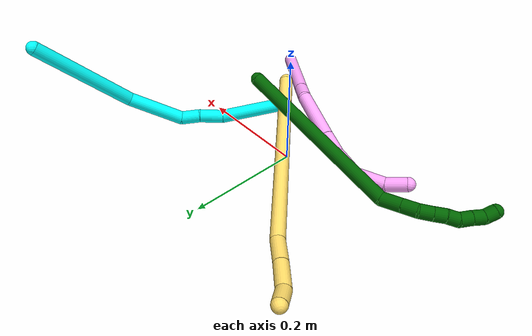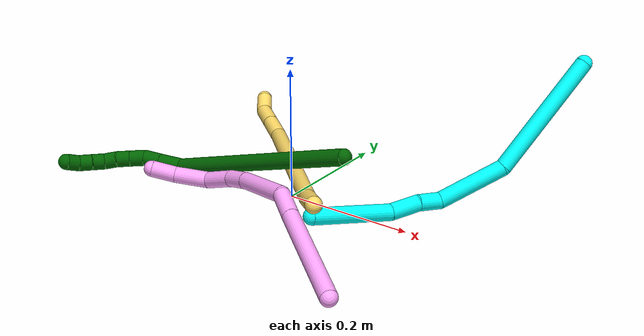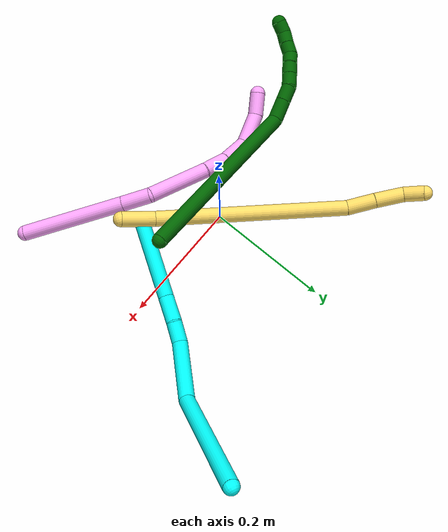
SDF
<sdf version="1.7">
 <world name="default">
  <model name="3">
   <static>0</static>
   <link name="3">
    <collision name="collision-cylinder-e_1_1_4">
     <pose>-0.011588 0.050584 -0.082127 -2.58955 -0.119561 0.416477</pose>
     <geometry><cylinder><radius>0.0125</radius><length>0.194297</length></cylinder></geometry>
     <surface>
      <friction><ode><mu>1.16</mu><mu2>1.16</mu2><slip1>0</slip1><slip2>0</slip2></ode></friction>
      <contact><ode><kp>1e+06</kp><kd>1</kd><max_vel>0</max_vel><min_depth>0.001</min_depth></ode></contact>
     </surface>
    </collision>
    <visual name="visual-cylinder-e_1_1_4">
     <pose>-0.011588 0.050584 -0.082127 -2.58955 -0.119561 0.416477</pose>
     <geometry><cylinder><radius>0.0125</radius><length>0.194297</length></cylinder></geometry>
     <material><ambient>0.003922 1 0.996078 1</ambient></material>
    </visual>
    <collision name="collision-cylinder-e_2_4_5">
     <pose>-0.040952 0.110059 -0.212188 -2.95818 -0.349654 2.18152</pose>
     <geometry><cylinder><radius>0.0125</radius><length>0.103783</length></cylinder></geometry>
     <surface>
      <friction><ode><mu>1.16</mu><mu2>1.16</mu2><slip1>0</slip1><slip2>0</slip2></ode></friction>
      <contact><ode><kp>1e+06</kp><kd>1</kd><max_vel>0</max_vel><min_depth>0.001</min_depth></ode></contact>
     </surface>
    </collision>
    <visual name="visual-cylinder-e_2_4_5">
     <pose>-0.040952 0.110059 -0.212188 -2.95818 -0.349654 2.18152</pose>
     <geometry><cylinder><radius>0.0125</radius><length>0.103783</length></cylinder></geometry>
     <material><ambient>0.003922 1 0.996078 1</ambient></material>
    </visual>
    <collision name="collision-cylinder-e_3_5_6">
     <pose>-0.061003 0.114065 -0.276443 2.85073 -0.132718 -0.851926</pose>
     <geometry><cylinder><radius>0.0125</radius><length>0.034377</length></cylinder></geometry>
     <surface>
      <friction><ode><mu>1.16</mu><mu2>1.16</mu2><slip1>0</slip1><slip2>0</slip2></ode></friction>
      <contact><ode><kp>1e+06</kp><kd>1</kd><max_vel>0</max_vel><min_depth>0.001</min_depth></ode></contact>
     </surface>
    </collision>
    <visual name="visual-cylinder-e_3_5_6">
     <pose>-0.061003 0.114065 -0.276443 2.85073 -0.132718 -0.851926</pose>
     <geometry><cylinder><radius>0.0125</radius><length>0.034377</length></cylinder></geometry>
     <material><ambient>0.003922 1 0.996078 1</ambient></material>
    </visual>
    <collision name="collision-cylinder-e_4_6_7">
     <pose>-0.06643 0.107449 -0.314794 3.06321 -0.141712 -2.13214</pose>
     <geometry><cylinder><radius>0.0125</radius><length>0.044642</length></cylinder></geometry>
     <surface>
      <friction><ode><mu>1.16</mu><mu2>1.16</mu2><slip1>0</slip1><slip2>0</slip2></ode></friction>
      <contact><ode><kp>1e+06</kp><kd>1</kd><max_vel>0</max_vel><min_depth>0.001</min_depth></ode></contact>
     </surface>
    </collision>
    <visual name="visual-cylinder-e_4_6_7">
     <pose>-0.06643 0.107449 -0.314794 3.06321 -0.141712 -2.13214</pose>
     <geometry><cylinder><radius>0.0125</radius><length>0.044642</length></cylinder></geometry>
     <material><ambient>0.003922 1 0.996078 1</ambient></material>
    </visual>
    <collision name="collision-cylinder-e_5_7_2">
     <pose>-0.074453 0.084272 -0.394204 2.7839 -0.079343 -0.432273</pose>
     <geometry><cylinder><radius>0.0125</radius><length>0.122901</length></cylinder></geometry>
     <surface>
      <friction><ode><mu>1.16</mu><mu2>1.16</mu2><slip1>0</slip1><slip2>0</slip2></ode></friction>
      <contact><ode><kp>1e+06</kp><kd>1</kd><max_vel>0</max_vel><min_depth>0.001</min_depth></ode></contact>
     </surface>
    </collision>
    <visual name="visual-cylinder-e_5_7_2">
     <pose>-0.074453 0.084272 -0.394204 2.7839 -0.079343 -0.432273</pose>
     <geometry><cylinder><radius>0.0125</radius><length>0.122901</length></cylinder></geometry>
     <material><ambient>0.003922 1 0.996078 1</ambient></material>
    </visual>
    <collision name="collision-sphere-2">
     <pose>-0.079324 0.062825 -0.451584 0 -0 0</pose>
     <geometry><sphere><radius>0.0125</radius></sphere></geometry>
     <surface>
      <friction><ode><mu>1.16</mu><mu2>1.16</mu2><slip1>0</slip1><slip2>0</slip2></ode></friction>
      <contact><ode><kp>1e+06</kp><kd>1</kd><max_vel>0</max_vel><min_depth>0.001</min_depth></ode></contact>
     </surface>
    </collision>
    <visual name="visual-sphere-2">
     <pose>-0.079324 0.062825 -0.451584 0 -0 0</pose>
     <geometry><sphere><radius>0.0125</radius></sphere></geometry>
     <material><ambient>0.003922 1 0.996078 1</ambient></material>
    </visual>
    <collision name="collision-sphere-7">
     <pose>-0.069583 0.105719 -0.336824 0 -0 0</pose>
     <geometry><sphere><radius>0.0125</radius></sphere></geometry>
     <surface>
      <friction><ode><mu>1.16</mu><mu2>1.16</mu2><slip1>0</slip1><slip2>0</slip2></ode></friction>
      <contact><ode><kp>1e+06</kp><kd>1</kd><max_vel>0</max_vel><min_depth>0.001</min_depth></ode></contact>
     </surface>
    </collision>
    <visual name="visual-sphere-7">
     <pose>-0.069583 0.105719 -0.336824 0 -0 0</pose>
     <geometry><sphere><radius>0.0125</radius></sphere></geometry>
     <material><ambient>0.003922 1 0.996078 1</ambient></material>
    </visual>
    <collision name="collision-sphere-6">
     <pose>-0.063277 0.109179 -0.292765 0 -0 0</pose>
     <geometry><sphere><radius>0.0125</radius></sphere></geometry>
     <surface>
      <friction><ode><mu>1.16</mu><mu2>1.16</mu2><slip1>0</slip1><slip2>0</slip2></ode></friction>
      <contact><ode><kp>1e+06</kp><kd>1</kd><max_vel>0</max_vel><min_depth>0.001</min_depth></ode></contact>
     </surface>
    </collision>
    <visual name="visual-sphere-6">
     <pose>-0.063277 0.109179 -0.292765 0 -0 0</pose>
     <geometry><sphere><radius>0.0125</radius></sphere></geometry>
     <material><ambient>0.003922 1 0.996078 1</ambient></material>
    </visual>
    <collision name="collision-sphere-5">
     <pose>-0.058728 0.118951 -0.260122 0 -0 0</pose>
     <geometry><sphere><radius>0.0125</radius></sphere></geometry>
     <surface>
      <friction><ode><mu>1.16</mu><mu2>1.16</mu2><slip1>0</slip1><slip2>0</slip2></ode></friction>
      <contact><ode><kp>1e+06</kp><kd>1</kd><max_vel>0</max_vel><min_depth>0.001</min_depth></ode></contact>
     </surface>
    </collision>
    <visual name="visual-sphere-5">
     <pose>-0.058728 0.118951 -0.260122 0 -0 0</pose>
     <geometry><sphere><radius>0.0125</radius></sphere></geometry>
     <material><ambient>0.003922 1 0.996078 1</ambient></material>
    </visual>
    <collision name="collision-sphere-1">
     <geometry><sphere><radius>0.0125</radius></sphere></geometry>
     <surface>
      <friction><ode><mu>1.16</mu><mu2>1.16</mu2><slip1>0</slip1><slip2>0</slip2></ode></friction>
      <contact><ode><kp>1e+06</kp><kd>1</kd><max_vel>0</max_vel><min_depth>0.001</min_depth></ode></contact>
     </surface>
    </collision>
    <visual name="visual-sphere-1">
     <geometry><sphere><radius>0.0125</radius></sphere></geometry>
     <material><ambient>0.003922 1 0.996078 1</ambient></material>
    </visual>
    <collision name="collision-sphere-4">
     <pose>-0.023175 0.101168 -0.164254 0 -0 0</pose>
     <geometry><sphere><radius>0.0125</radius></sphere></geometry>
     <surface>
      <friction><ode><mu>1.16</mu><mu2>1.16</mu2><slip1>0</slip1><slip2>0</slip2></ode></friction>
      <contact><ode><kp>1e+06</kp><kd>1</kd><max_vel>0</max_vel><min_depth>0.001</min_depth></ode></contact>
     </surface>
    </collision>
    <visual name="visual-sphere-4">
     <pose>-0.023175 0.101168 -0.164254 0 -0 0</pose>
     <geometry><sphere><radius>0.0125</radius></sphere></geometry>
     <material><ambient>0.003922 1 0.996078 1</ambient></material>
    </visual>
    <inertial>
     <pose>-0.041429 0.080651 -0.219966 0 -0 0</pose>
     <mass>0.5</mass>
     <inertia>
      <ixx>0.000892</ixx>
      <ixy>0</ixy>
      <ixz>0</ixz>
      <iyy>-0.000288</iyy>
      <iyz>0</iyz>
      <izz>-0.000195</izz>
     </inertia>
    </inertial>
   </link>
   <pose>0.320967 0.287701 0.193841 -1.36854 -0.222199 -0.445579</pose>
  </model>
  <model name="4">
   <static>0</static>
   <link name="4">
    <collision name="collision-cylinder-e_1_1_4">
     <pose>-0.053082 0.048563 -0.044909 -2.31713 -0.676273 1.35452</pose>
     <geometry><cylinder><radius>0.0125</radius><length>0.169622</length></cylinder></geometry>
     <surface>
      <friction><ode><mu>1.16</mu><mu2>1.16</mu2><slip1>0</slip1><slip2>0</slip2></ode></friction>
      <contact><ode><kp>1e+06</kp><kd>1</kd><max_vel>0</max_vel><min_depth>0.001</min_depth></ode></contact>
     </surface>
    </collision>
    <visual name="visual-cylinder-e_1_1_4">
     <pose>-0.053082 0.048563 -0.044909 -2.31713 -0.676273 1.35452</pose>
     <geometry><cylinder><radius>0.0125</radius><length>0.169622</length></cylinder></geometry>
     <material><ambient>1 0.65098 0.996078 1</ambient></material>
    </visual>
    <collision name="collision-cylinder-e_2_4_5">
     <pose>-0.121157 0.111408 -0.10151 -2.25679 -0.682162 1.2861</pose>
     <geometry><cylinder><radius>0.0125</radius><length>0.047559</length></cylinder></geometry>
     <surface>
      <friction><ode><mu>1.16</mu><mu2>1.16</mu2><slip1>0</slip1><slip2>0</slip2></ode></friction>
      <contact><ode><kp>1e+06</kp><kd>1</kd><max_vel>0</max_vel><min_depth>0.001</min_depth></ode></contact>
     </surface>
    </collision>
    <visual name="visual-cylinder-e_2_4_5">
     <pose>-0.121157 0.111408 -0.10151 -2.25679 -0.682162 1.2861</pose>
     <geometry><cylinder><radius>0.0125</radius><length>0.047559</length></cylinder></geometry>
     <material><ambient>1 0.65098 0.996078 1</ambient></material>
    </visual>
    <collision name="collision-cylinder-e_3_5_6">
     <pose>-0.170414 0.133719 -0.149453 -2.92366 -0.745291 2.59582</pose>
     <geometry><cylinder><radius>0.0125</radius><length>0.101047</length></cylinder></geometry>
     <surface>
      <friction><ode><mu>1.16</mu><mu2>1.16</mu2><slip1>0</slip1><slip2>0</slip2></ode></friction>
      <contact><ode><kp>1e+06</kp><kd>1</kd><max_vel>0</max_vel><min_depth>0.001</min_depth></ode></contact>
     </surface>
    </collision>
    <visual name="visual-cylinder-e_3_5_6">
     <pose>-0.170414 0.133719 -0.149453 -2.92366 -0.745291 2.59582</pose>
     <geometry><cylinder><radius>0.0125</radius><length>0.101047</length></cylinder></geometry>
     <material><ambient>1 0.65098 0.996078 1</ambient></material>
    </visual>
    <collision name="collision-cylinder-e_4_6_7">
     <pose>-0.21839 0.142554 -0.200757 -3.08805 -0.738073 3.00335</pose>
     <geometry><cylinder><radius>0.0125</radius><length>0.040756</length></cylinder></geometry>
     <surface>
      <friction><ode><mu>1.16</mu><mu2>1.16</mu2><slip1>0</slip1><slip2>0</slip2></ode></friction>
      <contact><ode><kp>1e+06</kp><kd>1</kd><max_vel>0</max_vel><min_depth>0.001</min_depth></ode></contact>
     </surface>
    </collision>
    <visual name="visual-cylinder-e_4_6_7">
     <pose>-0.21839 0.142554 -0.200757 -3.08805 -0.738073 3.00335</pose>
     <geometry><cylinder><radius>0.0125</radius><length>0.040756</length></cylinder></geometry>
     <material><ambient>1 0.65098 0.996078 1</ambient></material>
    </visual>
    <collision name="collision-cylinder-e_5_7_8">
     <pose>-0.250079 0.138931 -0.231862 2.87234 -0.823674 -2.54025</pose>
     <geometry><cylinder><radius>0.0125</radius><length>0.049009</length></cylinder></geometry>
     <surface>
      <friction><ode><mu>1.16</mu><mu2>1.16</mu2><slip1>0</slip1><slip2>0</slip2></ode></friction>
      <contact><ode><kp>1e+06</kp><kd>1</kd><max_vel>0</max_vel><min_depth>0.001</min_depth></ode></contact>
     </surface>
    </collision>
    <visual name="visual-cylinder-e_5_7_8">
     <pose>-0.250079 0.138931 -0.231862 2.87234 -0.823674 -2.54025</pose>
     <geometry><cylinder><radius>0.0125</radius><length>0.049009</length></cylinder></geometry>
     <material><ambient>1 0.65098 0.996078 1</ambient></material>
    </visual>
    <collision name="collision-cylinder-e_6_8_9">
     <pose>-0.293914 0.128036 -0.253464 2.28017 -1.25249 -2.00981</pose>
     <geometry><cylinder><radius>0.0125</radius><length>0.054451</length></cylinder></geometry>
     <surface>
      <friction><ode><mu>1.16</mu><mu2>1.16</mu2><slip1>0</slip1><slip2>0</slip2></ode></friction>
      <contact><ode><kp>1e+06</kp><kd>1</kd><max_vel>0</max_vel><min_depth>0.001</min_depth></ode></contact>
     </surface>
    </collision>
    <visual name="visual-cylinder-e_6_8_9">
     <pose>-0.293914 0.128036 -0.253464 2.28017 -1.25249 -2.00981</pose>
     <geometry><cylinder><radius>0.0125</radius><length>0.054451</length></cylinder></geometry>
     <material><ambient>1 0.65098 0.996078 1</ambient></material>
    </visual>
    <collision name="collision-cylinder-e_7_9_2">
     <pose>-0.337675 0.116571 -0.256349 1.08122 -1.26428 -0.828395</pose>
     <geometry><cylinder><radius>0.0125</radius><length>0.037556</length></cylinder></geometry>
     <surface>
      <friction><ode><mu>1.16</mu><mu2>1.16</mu2><slip1>0</slip1><slip2>0</slip2></ode></friction>
      <contact><ode><kp>1e+06</kp><kd>1</kd><max_vel>0</max_vel><min_depth>0.001</min_depth></ode></contact>
     </surface>
    </collision>
    <visual name="visual-cylinder-e_7_9_2">
     <pose>-0.337675 0.116571 -0.256349 1.08122 -1.26428 -0.828395</pose>
     <geometry><cylinder><radius>0.0125</radius><length>0.037556</length></cylinder></geometry>
     <material><ambient>1 0.65098 0.996078 1</ambient></material>
    </visual>
    <collision name="collision-sphere-2">
     <pose>-0.355578 0.11157 -0.253685 0 -0 0</pose>
     <geometry><sphere><radius>0.0125</radius></sphere></geometry>
     <surface>
      <friction><ode><mu>1.16</mu><mu2>1.16</mu2><slip1>0</slip1><slip2>0</slip2></ode></friction>
      <contact><ode><kp>1e+06</kp><kd>1</kd><max_vel>0</max_vel><min_depth>0.001</min_depth></ode></contact>
     </surface>
    </collision>
    <visual name="visual-sphere-2">
     <pose>-0.355578 0.11157 -0.253685 0 -0 0</pose>
     <geometry><sphere><radius>0.0125</radius></sphere></geometry>
     <material><ambient>1 0.65098 0.996078 1</ambient></material>
    </visual>
    <collision name="collision-sphere-9">
     <pose>-0.319772 0.121571 -0.259014 0 -0 0</pose>
     <geometry><sphere><radius>0.0125</radius></sphere></geometry>
     <surface>
      <friction><ode><mu>1.16</mu><mu2>1.16</mu2><slip1>0</slip1><slip2>0</slip2></ode></friction>
      <contact><ode><kp>1e+06</kp><kd>1</kd><max_vel>0</max_vel><min_depth>0.001</min_depth></ode></contact>
     </surface>
    </collision>
    <visual name="visual-sphere-9">
     <pose>-0.319772 0.121571 -0.259014 0 -0 0</pose>
     <geometry><sphere><radius>0.0125</radius></sphere></geometry>
     <material><ambient>1 0.65098 0.996078 1</ambient></material>
    </visual>
    <collision name="collision-sphere-4">
     <pose>-0.106165 0.097126 -0.089818 0 -0 0</pose>
     <geometry><sphere><radius>0.0125</radius></sphere></geometry>
     <surface>
      <friction><ode><mu>1.16</mu><mu2>1.16</mu2><slip1>0</slip1><slip2>0</slip2></ode></friction>
      <contact><ode><kp>1e+06</kp><kd>1</kd><max_vel>0</max_vel><min_depth>0.001</min_depth></ode></contact>
     </surface>
    </collision>
    <visual name="visual-sphere-4">
     <pose>-0.106165 0.097126 -0.089818 0 -0 0</pose>
     <geometry><sphere><radius>0.0125</radius></sphere></geometry>
     <material><ambient>1 0.65098 0.996078 1</ambient></material>
    </visual>
    <collision name="collision-sphere-1">
     <geometry><sphere><radius>0.0125</radius></sphere></geometry>
     <surface>
      <friction><ode><mu>1.16</mu><mu2>1.16</mu2><slip1>0</slip1><slip2>0</slip2></ode></friction>
      <contact><ode><kp>1e+06</kp><kd>1</kd><max_vel>0</max_vel><min_depth>0.001</min_depth></ode></contact>
     </surface>
    </collision>
    <visual name="visual-sphere-1">
     <geometry><sphere><radius>0.0125</radius></sphere></geometry>
     <material><ambient>1 0.65098 0.996078 1</ambient></material>
    </visual>
    <collision name="collision-sphere-8">
     <pose>-0.268057 0.134501 -0.247914 0 -0 0</pose>
     <geometry><sphere><radius>0.0125</radius></sphere></geometry>
     <surface>
      <friction><ode><mu>1.16</mu><mu2>1.16</mu2><slip1>0</slip1><slip2>0</slip2></ode></friction>
      <contact><ode><kp>1e+06</kp><kd>1</kd><max_vel>0</max_vel><min_depth>0.001</min_depth></ode></contact>
     </surface>
    </collision>
    <visual name="visual-sphere-8">
     <pose>-0.268057 0.134501 -0.247914 0 -0 0</pose>
     <geometry><sphere><radius>0.0125</radius></sphere></geometry>
     <material><ambient>1 0.65098 0.996078 1</ambient></material>
    </visual>
    <collision name="collision-sphere-5">
     <pose>-0.13615 0.125691 -0.113202 0 -0 0</pose>
     <geometry><sphere><radius>0.0125</radius></sphere></geometry>
     <surface>
      <friction><ode><mu>1.16</mu><mu2>1.16</mu2><slip1>0</slip1><slip2>0</slip2></ode></friction>
      <contact><ode><kp>1e+06</kp><kd>1</kd><max_vel>0</max_vel><min_depth>0.001</min_depth></ode></contact>
     </surface>
    </collision>
    <visual name="visual-sphere-5">
     <pose>-0.13615 0.125691 -0.113202 0 -0 0</pose>
     <geometry><sphere><radius>0.0125</radius></sphere></geometry>
     <material><ambient>1 0.65098 0.996078 1</ambient></material>
    </visual>
    <collision name="collision-sphere-6">
     <pose>-0.204678 0.141747 -0.185704 0 -0 0</pose>
     <geometry><sphere><radius>0.0125</radius></sphere></geometry>
     <surface>
      <friction><ode><mu>1.16</mu><mu2>1.16</mu2><slip1>0</slip1><slip2>0</slip2></ode></friction>
      <contact><ode><kp>1e+06</kp><kd>1</kd><max_vel>0</max_vel><min_depth>0.001</min_depth></ode></contact>
     </surface>
    </collision>
    <visual name="visual-sphere-6">
     <pose>-0.204678 0.141747 -0.185704 0 -0 0</pose>
     <geometry><sphere><radius>0.0125</radius></sphere></geometry>
     <material><ambient>1 0.65098 0.996078 1</ambient></material>
    </visual>
    <collision name="collision-sphere-7">
     <pose>-0.232101 0.14336 -0.215811 0 -0 0</pose>
     <geometry><sphere><radius>0.0125</radius></sphere></geometry>
     <surface>
      <friction><ode><mu>1.16</mu><mu2>1.16</mu2><slip1>0</slip1><slip2>0</slip2></ode></friction>
      <contact><ode><kp>1e+06</kp><kd>1</kd><max_vel>0</max_vel><min_depth>0.001</min_depth></ode></contact>
     </surface>
    </collision>
    <visual name="visual-sphere-7">
     <pose>-0.232101 0.14336 -0.215811 0 -0 0</pose>
     <geometry><sphere><radius>0.0125</radius></sphere></geometry>
     <material><ambient>1 0.65098 0.996078 1</ambient></material>
    </visual>
    <inertial>
     <pose>-0.163657 0.102032 -0.141043 0 -0 0</pose>
     <mass>0.5</mass>
     <inertia><ixx>0.000322</ixx><ixy>0</ixy><ixz>0</ixz><iyy>0.000605</iyy><iyz>0</iyz><izz>9e-05</izz></inertia>
    </inertial>
   </link>
   <pose>0.226125 -0.224036 0.011508 0.726871 0.346516 0.280384</pose>
  </model>
  <model name="5">
   <static>0</static>
   <link name="5">
    <collision name="collision-cylinder-e_1_1_4">
     <pose>-0.012582 0.004374 0.023949 -0.180637 -0.477 0.044031</pose>
     <geometry><cylinder><radius>0.0125</radius><length>0.054808</length></cylinder></geometry>
     <surface>
      <friction><ode><mu>1.16</mu><mu2>1.16</mu2><slip1>0</slip1><slip2>0</slip2></ode></friction>
      <contact><ode><kp>1e+06</kp><kd>1</kd><max_vel>0</max_vel><min_depth>0.001</min_depth></ode></contact>
     </surface>
    </collision>
    <visual name="visual-cylinder-e_1_1_4">
     <pose>-0.012582 0.004374 0.023949 -0.180637 -0.477 0.044031</pose>
     <geometry><cylinder><radius>0.0125</radius><length>0.054808</length></cylinder></geometry>
     <material><ambient>1 0.858824 0.4 1</ambient></material>
    </visual>
    <collision name="collision-cylinder-e_2_4_5">
     <pose>-0.074183 0.035514 0.195018 -0.179965 -0.316777 0.028821</pose>
     <geometry><cylinder><radius>0.0125</radius><length>0.314731</length></cylinder></geometry>
     <surface>
      <friction><ode><mu>1.16</mu><mu2>1.16</mu2><slip1>0</slip1><slip2>0</slip2></ode></friction>
      <contact><ode><kp>1e+06</kp><kd>1</kd><max_vel>0</max_vel><min_depth>0.001</min_depth></ode></contact>
     </surface>
    </collision>
    <visual name="visual-cylinder-e_2_4_5">
     <pose>-0.074183 0.035514 0.195018 -0.179965 -0.316777 0.028821</pose>
     <geometry><cylinder><radius>0.0125</radius><length>0.314731</length></cylinder></geometry>
     <material><ambient>1 0.858824 0.4 1</ambient></material>
    </visual>
    <collision name="collision-cylinder-e_3_5_6">
     <pose>-0.125881 0.063053 0.365735 -0.032774 -0.112938 0.001853</pose>
     <geometry><cylinder><radius>0.0125</radius><length>0.04752</length></cylinder></geometry>
     <surface>
      <friction><ode><mu>1.16</mu><mu2>1.16</mu2><slip1>0</slip1><slip2>0</slip2></ode></friction>
      <contact><ode><kp>1e+06</kp><kd>1</kd><max_vel>0</max_vel><min_depth>0.001</min_depth></ode></contact>
     </surface>
    </collision>
    <visual name="visual-cylinder-e_3_5_6">
     <pose>-0.125881 0.063053 0.365735 -0.032774 -0.112938 0.001853</pose>
     <geometry><cylinder><radius>0.0125</radius><length>0.04752</length></cylinder></geometry>
     <material><ambient>1 0.858824 0.4 1</ambient></material>
    </visual>
    <collision name="collision-cylinder-e_4_6_7">
     <pose>-0.132458 0.065247 0.4132 -0.059414 -0.161651 0.004814</pose>
     <geometry><cylinder><radius>0.0125</radius><length>0.048454</length></cylinder></geometry>
     <surface>
      <friction><ode><mu>1.16</mu><mu2>1.16</mu2><slip1>0</slip1><slip2>0</slip2></ode></friction>
      <contact><ode><kp>1e+06</kp><kd>1</kd><max_vel>0</max_vel><min_depth>0.001</min_depth></ode></contact>
     </surface>
    </collision>
    <visual name="visual-cylinder-e_4_6_7">
     <pose>-0.132458 0.065247 0.4132 -0.059414 -0.161651 0.004814</pose>
     <geometry><cylinder><radius>0.0125</radius><length>0.048454</length></cylinder></geometry>
     <material><ambient>1 0.858824 0.4 1</ambient></material>
    </visual>
    <collision name="collision-cylinder-e_5_7_2">
     <pose>-0.133855 0.071854 0.453322 -0.30892 0.145658 -0.022718</pose>
     <geometry><cylinder><radius>0.0125</radius><length>0.034487</length></cylinder></geometry>
     <surface>
      <friction><ode><mu>1.16</mu><mu2>1.16</mu2><slip1>0</slip1><slip2>0</slip2></ode></friction>
      <contact><ode><kp>1e+06</kp><kd>1</kd><max_vel>0</max_vel><min_depth>0.001</min_depth></ode></contact>
     </surface>
    </collision>
    <visual name="visual-cylinder-e_5_7_2">
     <pose>-0.133855 0.071854 0.453322 -0.30892 0.145658 -0.022718</pose>
     <geometry><cylinder><radius>0.0125</radius><length>0.034487</length></cylinder></geometry>
     <material><ambient>1 0.858824 0.4 1</ambient></material>
    </visual>
    <collision name="collision-sphere-2">
     <pose>-0.131352 0.077041 0.469576 0 -0 0</pose>
     <geometry><sphere><radius>0.0125</radius></sphere></geometry>
     <surface>
      <friction><ode><mu>1.16</mu><mu2>1.16</mu2><slip1>0</slip1><slip2>0</slip2></ode></friction>
      <contact><ode><kp>1e+06</kp><kd>1</kd><max_vel>0</max_vel><min_depth>0.001</min_depth></ode></contact>
     </surface>
    </collision>
    <visual name="visual-sphere-2">
     <pose>-0.131352 0.077041 0.469576 0 -0 0</pose>
     <geometry><sphere><radius>0.0125</radius></sphere></geometry>
     <material><ambient>1 0.858824 0.4 1</ambient></material>
    </visual>
    <collision name="collision-sphere-7">
     <pose>-0.136357 0.066667 0.437069 0 -0 0</pose>
     <geometry><sphere><radius>0.0125</radius></sphere></geometry>
     <surface>
      <friction><ode><mu>1.16</mu><mu2>1.16</mu2><slip1>0</slip1><slip2>0</slip2></ode></friction>
      <contact><ode><kp>1e+06</kp><kd>1</kd><max_vel>0</max_vel><min_depth>0.001</min_depth></ode></contact>
     </surface>
    </collision>
    <visual name="visual-sphere-7">
     <pose>-0.136357 0.066667 0.437069 0 -0 0</pose>
     <geometry><sphere><radius>0.0125</radius></sphere></geometry>
     <material><ambient>1 0.858824 0.4 1</ambient></material>
    </visual>
    <collision name="collision-sphere-6">
     <pose>-0.128559 0.063827 0.389331 0 -0 0</pose>
     <geometry><sphere><radius>0.0125</radius></sphere></geometry>
     <surface>
      <friction><ode><mu>1.16</mu><mu2>1.16</mu2><slip1>0</slip1><slip2>0</slip2></ode></friction>
      <contact><ode><kp>1e+06</kp><kd>1</kd><max_vel>0</max_vel><min_depth>0.001</min_depth></ode></contact>
     </surface>
    </collision>
    <visual name="visual-sphere-6">
     <pose>-0.128559 0.063827 0.389331 0 -0 0</pose>
     <geometry><sphere><radius>0.0125</radius></sphere></geometry>
     <material><ambient>1 0.858824 0.4 1</ambient></material>
    </visual>
    <collision name="collision-sphere-5">
     <pose>-0.123203 0.06228 0.342139 0 -0 0</pose>
     <geometry><sphere><radius>0.0125</radius></sphere></geometry>
     <surface>
      <friction><ode><mu>1.16</mu><mu2>1.16</mu2><slip1>0</slip1><slip2>0</slip2></ode></friction>
      <contact><ode><kp>1e+06</kp><kd>1</kd><max_vel>0</max_vel><min_depth>0.001</min_depth></ode></contact>
     </surface>
    </collision>
    <visual name="visual-sphere-5">
     <pose>-0.123203 0.06228 0.342139 0 -0 0</pose>
     <geometry><sphere><radius>0.0125</radius></sphere></geometry>
     <material><ambient>1 0.858824 0.4 1</ambient></material>
    </visual>
    <collision name="collision-sphere-1">
     <geometry><sphere><radius>0.0125</radius></sphere></geometry>
     <surface>
      <friction><ode><mu>1.16</mu><mu2>1.16</mu2><slip1>0</slip1><slip2>0</slip2></ode></friction>
      <contact><ode><kp>1e+06</kp><kd>1</kd><max_vel>0</max_vel><min_depth>0.001</min_depth></ode></contact>
     </surface>
    </collision>
    <visual name="visual-sphere-1">
     <geometry><sphere><radius>0.0125</radius></sphere></geometry>
     <material><ambient>1 0.858824 0.4 1</ambient></material>
    </visual>
    <collision name="collision-sphere-4">
     <pose>-0.025163 0.008747 0.047897 0 -0 0</pose>
     <geometry><sphere><radius>0.0125</radius></sphere></geometry>
     <surface>
      <friction><ode><mu>1.16</mu><mu2>1.16</mu2><slip1>0</slip1><slip2>0</slip2></ode></friction>
      <contact><ode><kp>1e+06</kp><kd>1</kd><max_vel>0</max_vel><min_depth>0.001</min_depth></ode></contact>
     </surface>
    </collision>
    <visual name="visual-sphere-4">
     <pose>-0.025163 0.008747 0.047897 0 -0 0</pose>
     <geometry><sphere><radius>0.0125</radius></sphere></geometry>
     <material><ambient>1 0.858824 0.4 1</ambient></material>
    </visual>
    <inertial>
     <pose>-0.082107 0.040106 0.231451 0 -0 0</pose>
     <mass>0.5</mass>
     <inertia>
      <ixx>0.002582</ixx>
      <ixy>0</ixy>
      <ixz>0</ixz>
      <iyy>0.002692</iyy>
      <iyz>0</iyz>
      <izz>0.00041</izz>
     </inertia>
    </inertial>
   </link>
   <pose>0.117034 -0.105417 0.061395 0.061893 -1.36225 -0.671948</pose>
  </model>
  <model name="6">
   <static>0</static>
   <link name="6">
    <collision name="collision-cylinder-e_1_1_4">
     <pose>-0.059561 0.02113 0.14251 -0.147198 -0.392024 0.029279</pose>
     <geometry><cylinder><radius>0.0125</radius><length>0.311789</length></cylinder></geometry>
     <surface>
      <friction><ode><mu>1.16</mu><mu2>1.16</mu2><slip1>0</slip1><slip2>0</slip2></ode></friction>
      <contact><ode><kp>1e+06</kp><kd>1</kd><max_vel>0</max_vel><min_depth>0.001</min_depth></ode></contact>
     </surface>
    </collision>
    <visual name="visual-cylinder-e_1_1_4">
     <pose>-0.059561 0.02113 0.14251 -0.147198 -0.392024 0.029279</pose>
     <geometry><cylinder><radius>0.0125</radius><length>0.311789</length></cylinder></geometry>
     <material><ambient>0 0.392157 0.003922 1</ambient></material>
    </visual>
    <collision name="collision-cylinder-e_2_4_5">
     <pose>-0.120456 0.03864 0.302627 0.202778 -0.074043 -0.007536</pose>
     <geometry><cylinder><radius>0.0125</radius><length>0.036049</length></cylinder></geometry>
     <surface>
      <friction><ode><mu>1.16</mu><mu2>1.16</mu2><slip1>0</slip1><slip2>0</slip2></ode></friction>
      <contact><ode><kp>1e+06</kp><kd>1</kd><max_vel>0</max_vel><min_depth>0.001</min_depth></ode></contact>
     </surface>
    </collision>
    <visual name="visual-cylinder-e_2_4_5">
     <pose>-0.120456 0.03864 0.302627 0.202778 -0.074043 -0.007536</pose>
     <geometry><cylinder><radius>0.0125</radius><length>0.036049</length></cylinder></geometry>
     <material><ambient>0 0.392157 0.003922 1</ambient></material>
    </visual>
    <collision name="collision-cylinder-e_3_5_6">
     <pose>-0.1226 0.032296 0.333623 0.2007 -0.059321 -0.005975</pose>
     <geometry><cylinder><radius>0.0125</radius><length>0.027375</length></cylinder></geometry>
     <surface>
      <friction><ode><mu>1.16</mu><mu2>1.16</mu2><slip1>0</slip1><slip2>0</slip2></ode></friction>
      <contact><ode><kp>1e+06</kp><kd>1</kd><max_vel>0</max_vel><min_depth>0.001</min_depth></ode></contact>
     </surface>
    </collision>
    <visual name="visual-cylinder-e_3_5_6">
     <pose>-0.1226 0.032296 0.333623 0.2007 -0.059321 -0.005975</pose>
     <geometry><cylinder><radius>0.0125</radius><length>0.027375</length></cylinder></geometry>
     <material><ambient>0 0.392157 0.003922 1</ambient></material>
    </visual>
    <collision name="collision-cylinder-e_4_6_7">
     <pose>-0.12642 0.024151 0.356707 0.509855 -0.264514 -0.069309</pose>
     <geometry><cylinder><radius>0.0125</radius><length>0.023015</length></cylinder></geometry>
     <surface>
      <friction><ode><mu>1.16</mu><mu2>1.16</mu2><slip1>0</slip1><slip2>0</slip2></ode></friction>
      <contact><ode><kp>1e+06</kp><kd>1</kd><max_vel>0</max_vel><min_depth>0.001</min_depth></ode></contact>
     </surface>
    </collision>
    <visual name="visual-cylinder-e_4_6_7">
     <pose>-0.12642 0.024151 0.356707 0.509855 -0.264514 -0.069309</pose>
     <geometry><cylinder><radius>0.0125</radius><length>0.023015</length></cylinder></geometry>
     <material><ambient>0 0.392157 0.003922 1</ambient></material>
    </visual>
    <collision name="collision-cylinder-e_5_7_8">
     <pose>-0.132015 0.013596 0.37493 0.541877 -0.254131 -0.070942</pose>
     <geometry><cylinder><radius>0.0125</radius><length>0.020569</length></cylinder></geometry>
     <surface>
      <friction><ode><mu>1.16</mu><mu2>1.16</mu2><slip1>0</slip1><slip2>0</slip2></ode></friction>
      <contact><ode><kp>1e+06</kp><kd>1</kd><max_vel>0</max_vel><min_depth>0.001</min_depth></ode></contact>
     </surface>
    </collision>
    <visual name="visual-cylinder-e_5_7_8">
     <pose>-0.132015 0.013596 0.37493 0.541877 -0.254131 -0.070942</pose>
     <geometry><cylinder><radius>0.0125</radius><length>0.020569</length></cylinder></geometry>
     <material><ambient>0 0.392157 0.003922 1</ambient></material>
    </visual>
    <collision name="collision-cylinder-e_6_8_9">
     <pose>-0.138501 0.004204 0.391662 0.478751 -0.399329 -0.098694</pose>
     <geometry><cylinder><radius>0.0125</radius><length>0.020065</length></cylinder></geometry>
     <surface>
      <friction><ode><mu>1.16</mu><mu2>1.16</mu2><slip1>0</slip1><slip2>0</slip2></ode></friction>
      <contact><ode><kp>1e+06</kp><kd>1</kd><max_vel>0</max_vel><min_depth>0.001</min_depth></ode></contact>
     </surface>
    </collision>
    <visual name="visual-cylinder-e_6_8_9">
     <pose>-0.138501 0.004204 0.391662 0.478751 -0.399329 -0.098694</pose>
     <geometry><cylinder><radius>0.0125</radius><length>0.020065</length></cylinder></geometry>
     <material><ambient>0 0.392157 0.003922 1</ambient></material>
    </visual>
    <collision name="collision-cylinder-e_7_9_10">
     <pose>-0.144034 -0.008014 0.406394 0.884002 -0.15731 -0.074563</pose>
     <geometry><cylinder><radius>0.0125</radius><length>0.020847</length></cylinder></geometry>
     <surface>
      <friction><ode><mu>1.16</mu><mu2>1.16</mu2><slip1>0</slip1><slip2>0</slip2></ode></friction>
      <contact><ode><kp>1e+06</kp><kd>1</kd><max_vel>0</max_vel><min_depth>0.001</min_depth></ode></contact>
     </surface>
    </collision>
    <visual name="visual-cylinder-e_7_9_10">
     <pose>-0.144034 -0.008014 0.406394 0.884002 -0.15731 -0.074563</pose>
     <geometry><cylinder><radius>0.0125</radius><length>0.020847</length></cylinder></geometry>
     <material><ambient>0 0.392157 0.003922 1</ambient></material>
    </visual>
    <collision name="collision-cylinder-e_8_10_11">
     <pose>-0.147508 -0.023172 0.419775 0.809781 -0.183129 -0.078663</pose>
     <geometry><cylinder><radius>0.0125</radius><length>0.020214</length></cylinder></geometry>
     <surface>
      <friction><ode><mu>1.16</mu><mu2>1.16</mu2><slip1>0</slip1><slip2>0</slip2></ode></friction>
      <contact><ode><kp>1e+06</kp><kd>1</kd><max_vel>0</max_vel><min_depth>0.001</min_depth></ode></contact>
     </surface>
    </collision>
    <visual name="visual-cylinder-e_8_10_11">
     <pose>-0.147508 -0.023172 0.419775 0.809781 -0.183129 -0.078663</pose>
     <geometry><cylinder><radius>0.0125</radius><length>0.020214</length></cylinder></geometry>
     <material><ambient>0 0.392157 0.003922 1</ambient></material>
    </visual>
    <collision name="collision-cylinder-e_9_11_2">
     <pose>-0.148439 -0.03904 0.431602 1.05011 0.090694 0.052562</pose>
     <geometry><cylinder><radius>0.0125</radius><length>0.020076</length></cylinder></geometry>
     <surface>
      <friction><ode><mu>1.16</mu><mu2>1.16</mu2><slip1>0</slip1><slip2>0</slip2></ode></friction>
      <contact><ode><kp>1e+06</kp><kd>1</kd><max_vel>0</max_vel><min_depth>0.001</min_depth></ode></contact>
     </surface>
    </collision>
    <visual name="visual-cylinder-e_9_11_2">
     <pose>-0.148439 -0.03904 0.431602 1.05011 0.090694 0.052562</pose>
     <geometry><cylinder><radius>0.0125</radius><length>0.020076</length></cylinder></geometry>
     <material><ambient>0 0.392157 0.003922 1</ambient></material>
    </visual>
    <collision name="collision-sphere-2">
     <pose>-0.14753 -0.047712 0.436575 0 -0 0</pose>
     <geometry><sphere><radius>0.0125</radius></sphere></geometry>
     <surface>
      <friction><ode><mu>1.16</mu><mu2>1.16</mu2><slip1>0</slip1><slip2>0</slip2></ode></friction>
      <contact><ode><kp>1e+06</kp><kd>1</kd><max_vel>0</max_vel><min_depth>0.001</min_depth></ode></contact>
     </surface>
    </collision>
    <visual name="visual-sphere-2">
     <pose>-0.14753 -0.047712 0.436575 0 -0 0</pose>
     <geometry><sphere><radius>0.0125</radius></sphere></geometry>
     <material><ambient>0 0.392157 0.003922 1</ambient></material>
    </visual>
    <collision name="collision-sphere-11">
     <pose>-0.149349 -0.030368 0.426629 0 -0 0</pose>
     <geometry><sphere><radius>0.0125</radius></sphere></geometry>
     <surface>
      <friction><ode><mu>1.16</mu><mu2>1.16</mu2><slip1>0</slip1><slip2>0</slip2></ode></friction>
      <contact><ode><kp>1e+06</kp><kd>1</kd><max_vel>0</max_vel><min_depth>0.001</min_depth></ode></contact>
     </surface>
    </collision>
    <visual name="visual-sphere-11">
     <pose>-0.149349 -0.030368 0.426629 0 -0 0</pose>
     <geometry><sphere><radius>0.0125</radius></sphere></geometry>
     <material><ambient>0 0.392157 0.003922 1</ambient></material>
    </visual>
    <collision name="collision-sphere-10">
     <pose>-0.145667 -0.015975 0.412921 0 -0 0</pose>
     <geometry><sphere><radius>0.0125</radius></sphere></geometry>
     <surface>
      <friction><ode><mu>1.16</mu><mu2>1.16</mu2><slip1>0</slip1><slip2>0</slip2></ode></friction>
      <contact><ode><kp>1e+06</kp><kd>1</kd><max_vel>0</max_vel><min_depth>0.001</min_depth></ode></contact>
     </surface>
    </collision>
    <visual name="visual-sphere-10">
     <pose>-0.145667 -0.015975 0.412921 0 -0 0</pose>
     <geometry><sphere><radius>0.0125</radius></sphere></geometry>
     <material><ambient>0 0.392157 0.003922 1</ambient></material>
    </visual>
    <collision name="collision-sphere-9">
     <pose>-0.142401 -5.4e-05 0.399866 0 -0 0</pose>
     <geometry><sphere><radius>0.0125</radius></sphere></geometry>
     <surface>
      <friction><ode><mu>1.16</mu><mu2>1.16</mu2><slip1>0</slip1><slip2>0</slip2></ode></friction>
      <contact><ode><kp>1e+06</kp><kd>1</kd><max_vel>0</max_vel><min_depth>0.001</min_depth></ode></contact>
     </surface>
    </collision>
    <visual name="visual-sphere-9">
     <pose>-0.142401 -5.4e-05 0.399866 0 -0 0</pose>
     <geometry><sphere><radius>0.0125</radius></sphere></geometry>
     <material><ambient>0 0.392157 0.003922 1</ambient></material>
    </visual>
    <collision name="collision-sphere-4">
     <pose>-0.119122 0.04226 0.28502 0 -0 0</pose>
     <geometry><sphere><radius>0.0125</radius></sphere></geometry>
     <surface>
      <friction><ode><mu>1.16</mu><mu2>1.16</mu2><slip1>0</slip1><slip2>0</slip2></ode></friction>
      <contact><ode><kp>1e+06</kp><kd>1</kd><max_vel>0</max_vel><min_depth>0.001</min_depth></ode></contact>
     </surface>
    </collision>
    <visual name="visual-sphere-4">
     <pose>-0.119122 0.04226 0.28502 0 -0 0</pose>
     <geometry><sphere><radius>0.0125</radius></sphere></geometry>
     <material><ambient>0 0.392157 0.003922 1</ambient></material>
    </visual>
    <collision name="collision-sphere-1">
     <geometry><sphere><radius>0.0125</radius></sphere></geometry>
     <surface>
      <friction><ode><mu>1.16</mu><mu2>1.16</mu2><slip1>0</slip1><slip2>0</slip2></ode></friction>
      <contact><ode><kp>1e+06</kp><kd>1</kd><max_vel>0</max_vel><min_depth>0.001</min_depth></ode></contact>
     </surface>
    </collision>
    <visual name="visual-sphere-1">
     <geometry><sphere><radius>0.0125</radius></sphere></geometry>
     <material><ambient>0 0.392157 0.003922 1</ambient></material>
    </visual>
    <collision name="collision-sphere-8">
     <pose>-0.1346 0.008462 0.383458 0 -0 0</pose>
     <geometry><sphere><radius>0.0125</radius></sphere></geometry>
     <surface>
      <friction><ode><mu>1.16</mu><mu2>1.16</mu2><slip1>0</slip1><slip2>0</slip2></ode></friction>
      <contact><ode><kp>1e+06</kp><kd>1</kd><max_vel>0</max_vel><min_depth>0.001</min_depth></ode></contact>
     </surface>
    </collision>
    <visual name="visual-sphere-8">
     <pose>-0.1346 0.008462 0.383458 0 -0 0</pose>
     <geometry><sphere><radius>0.0125</radius></sphere></geometry>
     <material><ambient>0 0.392157 0.003922 1</ambient></material>
    </visual>
    <collision name="collision-sphere-5">
     <pose>-0.121789 0.03502 0.320234 0 -0 0</pose>
     <geometry><sphere><radius>0.0125</radius></sphere></geometry>
     <surface>
      <friction><ode><mu>1.16</mu><mu2>1.16</mu2><slip1>0</slip1><slip2>0</slip2></ode></friction>
      <contact><ode><kp>1e+06</kp><kd>1</kd><max_vel>0</max_vel><min_depth>0.001</min_depth></ode></contact>
     </surface>
    </collision>
    <visual name="visual-sphere-5">
     <pose>-0.121789 0.03502 0.320234 0 -0 0</pose>
     <geometry><sphere><radius>0.0125</radius></sphere></geometry>
     <material><ambient>0 0.392157 0.003922 1</ambient></material>
    </visual>
    <collision name="collision-sphere-6">
     <pose>-0.123412 0.029572 0.347012 0 -0 0</pose>
     <geometry><sphere><radius>0.0125</radius></sphere></geometry>
     <surface>
      <friction><ode><mu>1.16</mu><mu2>1.16</mu2><slip1>0</slip1><slip2>0</slip2></ode></friction>
      <contact><ode><kp>1e+06</kp><kd>1</kd><max_vel>0</max_vel><min_depth>0.001</min_depth></ode></contact>
     </surface>
    </collision>
    <visual name="visual-sphere-6">
     <pose>-0.123412 0.029572 0.347012 0 -0 0</pose>
     <geometry><sphere><radius>0.0125</radius></sphere></geometry>
     <material><ambient>0 0.392157 0.003922 1</ambient></material>
    </visual>
    <collision name="collision-sphere-7">
     <pose>-0.129429 0.01873 0.366402 0 -0 0</pose>
     <geometry><sphere><radius>0.0125</radius></sphere></geometry>
     <surface>
      <friction><ode><mu>1.16</mu><mu2>1.16</mu2><slip1>0</slip1><slip2>0</slip2></ode></friction>
      <contact><ode><kp>1e+06</kp><kd>1</kd><max_vel>0</max_vel><min_depth>0.001</min_depth></ode></contact>
     </surface>
    </collision>
    <visual name="visual-sphere-7">
     <pose>-0.129429 0.01873 0.366402 0 -0 0</pose>
     <geometry><sphere><radius>0.0125</radius></sphere></geometry>
     <material><ambient>0 0.392157 0.003922 1</ambient></material>
    </visual>
    <inertial>
     <pose>-0.087275 0.016732 0.227756 0 -0 0</pose>
     <mass>0.5</mass>
     <inertia>
      <ixx>0.002418</ixx>
      <ixy>0</ixy>
      <ixz>0</ixz>
      <iyy>0.002593</iyy>
      <iyz>0</iyz>
      <izz>0.00067</izz>
     </inertia>
    </inertial>
   </link>
   <pose>0.110703 -0.025898 0.101887 -1.0349 -1.32931 1.1338</pose>
  </model>
 </world>
</sdf>
